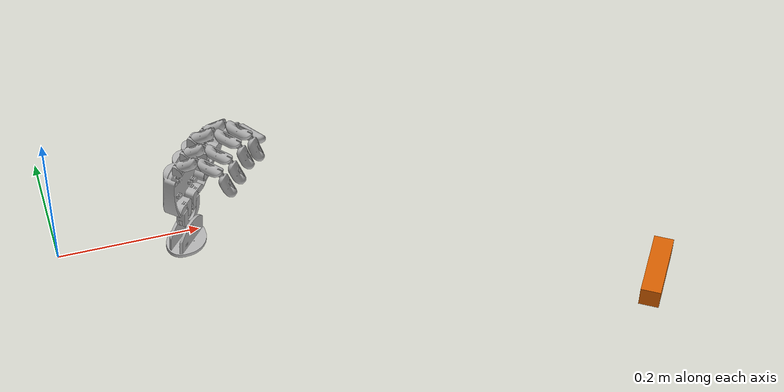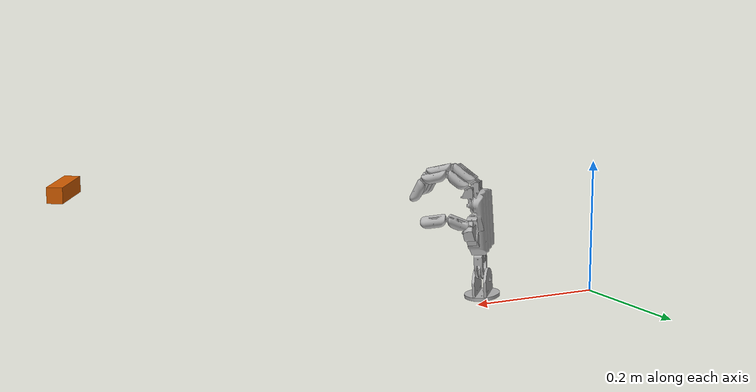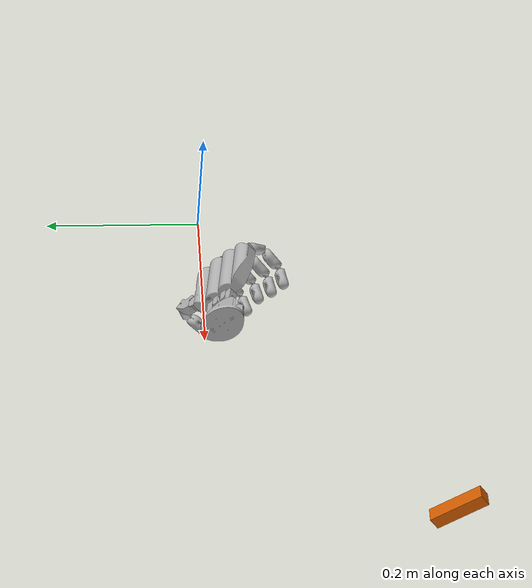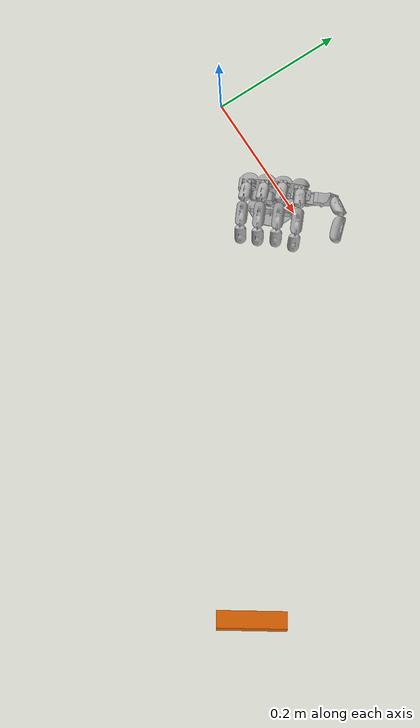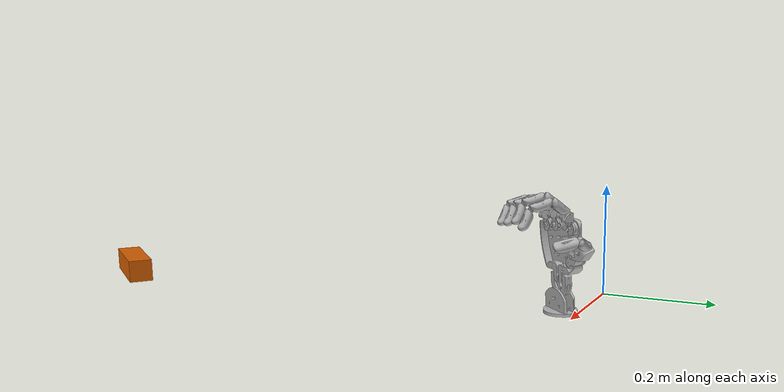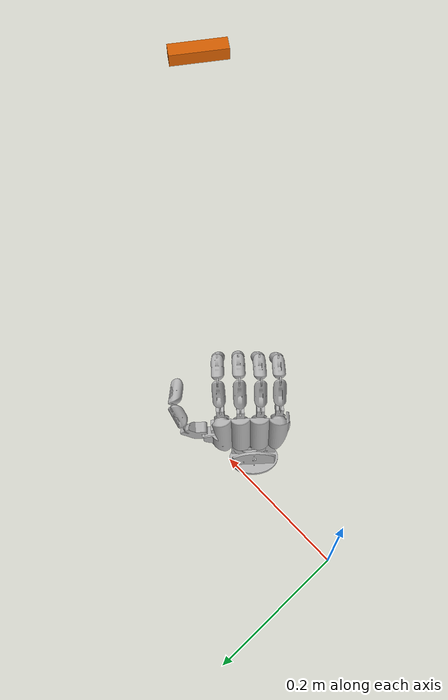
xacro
<?xml version="1.0" ?>
<robot name="anael" xmlns:xacro="http://www.ros.org/wiki/xacro">

<xacro:include filename="$(find anael_description)/urdf/materials.xacro" />
<xacro:include filename="$(find anael_description)/urdf/anael.trans" />
<xacro:include filename="$(find anael_description)/urdf/anael.gazebo" />

<gazebo>
    <plugin name="gazebo_ros_control" filename="libgazebo_ros_control.so">
      <robotNamespace>/anael</robotNamespace>
    </plugin>
</gazebo>

 <xacro:property name="PI" value="3.14159265359"/>
 <xacro:property name="mass" value="0.1" />
 <xacro:property name="x" value="0.025" />
 <xacro:property name="y" value="0.1" />
 <xacro:property name="z" value="0.025" />

<link name="base_link">
  <inertial>
    <origin rpy="0 0 0" xyz="0.10002682557543335 0.012769323705889093 0.07709696684718728"/>
    <mass value="0.23588508306984027"/>
    <inertia ixx="0.000089685" ixy="0.0" ixz="-0.0" iyy="0.0001505" iyz="0.0" izz="0.00013183"/>
  </inertial>
  <visual>
    <origin rpy="1.5 0 4" xyz="0.3 0 0"/>
    <geometry>
      <mesh filename="package://anael_description/meshes/base_link.stl" scale="0.001 0.001 0.001"/>
    </geometry>
    <material name="silver"/>
  </visual>
  <collision>
    <origin rpy="0 0 0" xyz="0 0 0"/>
    <geometry>
      <mesh filename="package://anael_description/meshes/base_link.stl" scale="0.001 0.001 0.001"/>
    </geometry>
  </collision>
</link>

<link name="bilekss_1">
  <inertial>
    <origin rpy="0 0 0" xyz="-8.27316457494287e-05 0.014975284308614334 0.006249999999999964"/>
    <mass value="0.06116058629875486"/>
    <inertia ixx="0.000008005" ixy="-0.0" ixz="0.0" iyy="0.000011149" iyz="0.0" izz="0.000017562"/>
  </inertial>
  <visual>
    <origin rpy="0 0 0" xyz="-0.1 -0.035 -0.071"/>
    <geometry>
      <mesh filename="package://anael_description/meshes/bilekss_1.stl" scale="0.001 0.001 0.001"/>
    </geometry>
    <material name="silver"/>
  </visual>
  <collision>
    <origin rpy="0 0 0" xyz="-0.1 -0.035 -0.071"/>
    <geometry>
      <mesh filename="package://anael_description/meshes/bilekss_1.stl" scale="0.001 0.001 0.001"/>
    </geometry>
  </collision>
</link>

<link name="el_1">
  <inertial>
    <origin rpy="0 0 0" xyz="-0.012835401921183695 0.048777298438696076 0.007642721088233481"/>
    <mass value="0.702343206321419"/>
    <inertia ixx="0.00074524" ixy="0.0" ixz="0.0" iyy="0.00082904" iyz="0.0" izz="0.001485"/>
  </inertial>
  <visual>
    <origin rpy="0 0 0" xyz="-0.112348 -0.062569 -0.07725"/>
    <geometry>
      <mesh filename="package://anael_description/meshes/el_1.stl" scale="0.001 0.001 0.001"/>
    </geometry>
    <material name="silver"/>
  </visual>
  <collision>
    <origin rpy="0 0 0" xyz="-0.112348 -0.062569 -0.07725"/>
    <geometry>
      <mesh filename="package://anael_description/meshes/el_1.stl" scale="0.001 0.001 0.001"/>
    </geometry>
  </collision>
</link>

<link name="bilekmakya_1">
  <inertial>
    <origin rpy="0 0 0" xyz="-0.002500088024158964 -1.4037957827742198e-05 -6.661338147750939e-16"/>
    <mass value="0.005498755569902937"/>
    <inertia ixx="2.0658e-7" ixy="0.0" ixz="-0.0" iyy="1.1495e-7" iyz="-0.0" izz="1.1532e-7"/>
  </inertial>
  <visual>
    <origin rpy="0 0 0" xyz="-0.102598 -0.062515 -0.07725"/>
    <geometry>
      <mesh filename="package://anael_description/meshes/bilekmakya_1.stl" scale="0.001 0.001 0.001"/>
    </geometry>
    <material name="silver"/>
  </visual>
  <collision>
    <origin rpy="0 0 0" xyz="-0.102598 -0.062515 -0.07725"/>
    <geometry>
      <mesh filename="package://anael_description/meshes/bilekmakya_1.stl" scale="0.001 0.001 0.001"/>
    </geometry>
  </collision>
</link>

<link name="bilekmakss_1">
  <inertial>
    <origin rpy="0 0 0" xyz="-1.2073675392798577e-15 -2.7755575615628914e-17 0.002500000000000238"/>
    <mass value="0.005498755569902937"/>
    <inertia ixx="1.1456e-7" ixy="0.0" ixz="0.0" iyy="1.1456e-7" iyz="0.0" izz="2.0621e-7"/>
  </inertial>
  <visual>
    <origin rpy="0 0 0" xyz="-0.1 -0.035 -0.07475"/>
    <geometry>
      <mesh filename="package://anael_description/meshes/bilekmakss_1.stl" scale="0.001 0.001 0.001"/>
    </geometry>
    <material name="silver"/>
  </visual>
  <collision>
    <origin rpy="0 0 0" xyz="-0.1 -0.035 -0.07475"/>
    <geometry>
      <mesh filename="package://anael_description/meshes/bilekmakss_1.stl" scale="0.001 0.001 0.001"/>
    </geometry>
  </collision>
</link>

<link name="bas1_1">
  <inertial>
    <origin rpy="0 0 0" xyz="-0.005673915058689145 0.011055433620382665 -0.007628462814600764"/>
    <mass value="0.06128758784766406"/>
    <inertia ixx="0.000011298" ixy="0.0" ixz="-0.0" iyy="0.0000064231" iyz="0.0" izz="0.00001536"/>
  </inertial>
  <visual>
    <origin rpy="0 0 0" xyz="-0.062528 -0.092533 -0.083767"/>
    <geometry>
      <mesh filename="package://anael_description/meshes/bas1_1.stl" scale="0.001 0.001 0.001"/>
    </geometry>
    <material name="silver"/>
  </visual>
  <collision>
    <origin rpy="0 0 0" xyz="-0.062528 -0.092533 -0.083767"/>
    <geometry>
      <mesh filename="package://anael_description/meshes/bas1_1.stl" scale="0.001 0.001 0.001"/>
    </geometry>
  </collision>
</link>

<link name="bas2_1">
  <inertial>
    <origin rpy="0 0 0" xyz="-0.020392823064728817 0.012419984525536498 6.508410954234045e-05"/>
    <mass value="0.08029006275726228"/>
    <inertia ixx="0.000009108" ixy="0.0" ixz="0.0" iyy="0.000020032" iyz="-0.0" izz="0.000024305"/>
  </inertial>
  <visual>
    <origin rpy="0 0 0" xyz="-0.049989 -0.099971 -0.076271"/>
    <geometry>
      <mesh filename="package://anael_description/meshes/bas2_1.stl" scale="0.001 0.001 0.001"/>
    </geometry>
    <material name="silver"/>
  </visual>
  <collision>
    <origin rpy="0 0 0" xyz="-0.049989 -0.099971 -0.076271"/>
    <geometry>
      <mesh filename="package://anael_description/meshes/bas2_1.stl" scale="0.001 0.001 0.001"/>
    </geometry>
  </collision>
</link>

<link name="bas3_1">
  <inertial>
    <origin rpy="0 0 0" xyz="-0.013173602102555821 0.011769487003394322 -0.0008753119918628732"/>
    <mass value="0.0436563439389364"/>
    <inertia ixx="0.000004861" ixy="0.0" ixz="-0.0" iyy="0.000004917" iyz="0.0" izz="0.000007783"/>
  </inertial>
  <visual>
    <origin rpy="0 0 0" xyz="-0.01464 -0.124406 -0.076285"/>
    <geometry>
      <mesh filename="package://anael_description/meshes/bas3_1.stl" scale="0.001 0.001 0.001"/>
    </geometry>
    <material name="silver"/>
  </visual>
  <collision>
    <origin rpy="0 0 0" xyz="-0.01464 -0.124406 -0.076285"/>
    <geometry>
      <mesh filename="package://anael_description/meshes/bas3_1.stl" scale="0.001 0.001 0.001"/>
    </geometry>
  </collision>
</link>

<link name="bas4_1">
  <inertial>
    <origin rpy="0 0 0" xyz="-0.015921842905640034 0.014490313495941293 -0.0033529053849926244"/>
    <mass value="0.05495371153395965"/>
    <inertia ixx="0.000008734" ixy="0.0" ixz="0.0" iyy="0.000008839" iyz="0.0" izz="0.000013838"/>
  </inertial>
  <visual>
    <origin rpy="0 0 0" xyz="0.00795 -0.146901 -0.073509"/>
    <geometry>
      <mesh filename="package://anael_description/meshes/bas4_1.stl" scale="0.001 0.001 0.001"/>
    </geometry>
    <material name="silver"/>
  </visual>
  <collision>
    <origin rpy="0 0 0" xyz="0.00795 -0.146901 -0.073509"/>
    <geometry>
      <mesh filename="package://anael_description/meshes/bas4_1.stl" scale="0.001 0.001 0.001"/>
    </geometry>
  </collision>
</link>

<link name="i1_1">
  <inertial>
    <origin rpy="0 0 0" xyz="1.6796940591576326e-05 -0.0002604854005841817 -0.0023322948385045422"/>
    <mass value="0.00767828320566423"/>
    <inertia ixx="2.9216e-7" ixy="-0.0" ixz="-0.0" iyy="2.9692e-7" iyz="0.0" izz="5.071e-7"/>
  </inertial>
  <visual>
    <origin rpy="0 0 0" xyz="-0.06223 -0.146535 -0.078797"/>
    <geometry>
      <mesh filename="package://anael_description/meshes/i1_1.stl" scale="0.001 0.001 0.001"/>
    </geometry>
    <material name="silver"/>
  </visual>
  <collision>
    <origin rpy="0 0 0" xyz="-0.06223 -0.146535 -0.078797"/>
    <geometry>
      <mesh filename="package://anael_description/meshes/i1_1.stl" scale="0.001 0.001 0.001"/>
    </geometry>
  </collision>
</link>

<link name="i2_1">
  <inertial>
    <origin rpy="0 0 0" xyz="-0.0020180489586227313 0.011472340663435499 -0.0017851926234861565"/>
    <mass value="0.014034991016966505"/>
    <inertia ixx="0.000001012" ixy="0.0" ixz="0.0" iyy="5.6343e-7" iyz="-0.0" izz="7.3032e-7"/>
  </inertial>
  <visual>
    <origin rpy="0 0 0" xyz="-0.063094 -0.152358 -0.073801"/>
    <geometry>
      <mesh filename="package://anael_description/meshes/i2_1.stl" scale="0.001 0.001 0.001"/>
    </geometry>
    <material name="silver"/>
  </visual>
  <collision>
    <origin rpy="0 0 0" xyz="-0.063094 -0.152358 -0.073801"/>
    <geometry>
      <mesh filename="package://anael_description/meshes/i2_1.stl" scale="0.001 0.001 0.001"/>
    </geometry>
  </collision>
</link>

<link name="i3_1">
  <inertial>
    <origin rpy="0 0 0" xyz="-0.0021612969641609456 0.01887681074886277 -0.001082047758521748"/>
    <mass value="0.04193790296481513"/>
    <inertia ixx="0.0000075677" ixy="0.0" ixz="-0.0" iyy="0.0000021172" iyz="0.0" izz="0.0000077397"/>
  </inertial>
  <visual>
    <origin rpy="0 0 0" xyz="-0.061613 -0.170802 -0.071311"/>
    <geometry>
      <mesh filename="package://anael_description/meshes/i3_1.stl" scale="0.001 0.001 0.001"/>
    </geometry>
    <material name="silver"/>
  </visual>
  <collision>
    <origin rpy="0 0 0" xyz="-0.061613 -0.170802 -0.071311"/>
    <geometry>
      <mesh filename="package://anael_description/meshes/i3_1.stl" scale="0.001 0.001 0.001"/>
    </geometry>
  </collision>
</link>

<link name="i4_1">
  <inertial>
    <origin rpy="0 0 0" xyz="-0.0022404721280600767 0.020061065664474076 -0.0031825316742030707"/>
    <mass value="0.0479861517111094"/>
    <inertia ixx="0.0000101" ixy="0.0" ixz="-0.0" iyy="0.0000028047" iyz="0.0" izz="0.0000099684"/>
  </inertial>
  <visual>
    <origin rpy="0 0 0" xyz="-0.059392 -0.2056 -0.06828"/>
    <geometry>
      <mesh filename="package://anael_description/meshes/i4_1.stl" scale="0.001 0.001 0.001"/>
    </geometry>
    <material name="silver"/>
  </visual>
  <collision>
    <origin rpy="0 0 0" xyz="-0.059392 -0.2056 -0.06828"/>
    <geometry>
      <mesh filename="package://anael_description/meshes/i4_1.stl" scale="0.001 0.001 0.001"/>
    </geometry>
  </collision>
</link>

<link name="i5_1">
  <inertial>
    <origin rpy="0 0 0" xyz="-0.002130576123605177 0.018422904227623937 -0.004389890187645032"/>
    <mass value="0.04261604760031565"/>
    <inertia ixx="0.0000077755" ixy="0.0" ixz="-0.0" iyy="0.0000026174" iyz="0.0" izz="0.0000074786"/>
  </inertial>
  <visual>
    <origin rpy="0 0 0" xyz="-0.057 -0.24295 -0.061703"/>
    <geometry>
      <mesh filename="package://anael_description/meshes/i5_1.stl" scale="0.001 0.001 0.001"/>
    </geometry>
    <material name="silver"/>
  </visual>
  <collision>
    <origin rpy="0 0 0" xyz="-0.057 -0.24295 -0.061703"/>
    <geometry>
      <mesh filename="package://anael_description/meshes/i5_1.stl" scale="0.001 0.001 0.001"/>
    </geometry>
  </collision>
</link>

<link name="o1_1">
  <inertial>
    <origin rpy="0 0 0" xyz="1.0750374228735149e-06 -0.0002606606302434922 -0.002332323827817992"/>
    <mass value="0.00767828315309844"/>
    <inertia ixx="2.887e-7" ixy="-0.0" ixz="-0.0" iyy="2.9692e-7" iyz="0.0" izz="5.0364e-7"/>
  </inertial>
  <visual>
    <origin rpy="0 0 0" xyz="-0.08721 -0.15017 -0.083799"/>
    <geometry>
      <mesh filename="package://anael_description/meshes/o1_1.stl" scale="0.001 0.001 0.001"/>
    </geometry>
    <material name="silver"/>
  </visual>
  <collision>
    <origin rpy="0 0 0" xyz="-0.08721 -0.15017 -0.083799"/>
    <geometry>
      <mesh filename="package://anael_description/meshes/o1_1.stl" scale="0.001 0.001 0.001"/>
    </geometry>
  </collision>
</link>

<link name="o2_1">
  <inertial>
    <origin rpy="0 0 0" xyz="-6.998296994781272e-05 0.012580902590559467 -0.0017842031247212453"/>
    <mass value="0.014034991016966505"/>
    <inertia ixx="9.9062e-7" ixy="0.0" ixz="0.0" iyy="5.4144e-7" iyz="-0.0" izz="6.87e-7"/>
  </inertial>
  <visual>
    <origin rpy="0 0 0" xyz="-0.087184 -0.154923 -0.078802"/>
    <geometry>
      <mesh filename="package://anael_description/meshes/o2_1.stl" scale="0.001 0.001 0.001"/>
    </geometry>
    <material name="silver"/>
  </visual>
  <collision>
    <origin rpy="0 0 0" xyz="-0.087184 -0.154923 -0.078802"/>
    <geometry>
      <mesh filename="package://anael_description/meshes/o2_1.stl" scale="0.001 0.001 0.001"/>
    </geometry>
  </collision>
</link>

<link name="o3_1">
  <inertial>
    <origin rpy="0 0 0" xyz="-0.001013122180829662 0.020360429581470052 -0.0012243834406794885"/>
    <mass value="0.04651721860873003"/>
    <inertia ixx="0.0000094543" ixy="0.0" ixz="-0.0" iyy="0.0000022536" iyz="0.0" izz="0.0000094714"/>
  </inertial>
  <visual>
    <origin rpy="0 0 0" xyz="-0.088076 -0.17443 -0.076313"/>
    <geometry>
      <mesh filename="package://anael_description/meshes/o3_1.stl" scale="0.001 0.001 0.001"/>
    </geometry>
    <material name="silver"/>
  </visual>
  <collision>
    <origin rpy="0 0 0" xyz="-0.088076 -0.17443 -0.076313"/>
    <geometry>
      <mesh filename="package://anael_description/meshes/o3_1.stl" scale="0.001 0.001 0.001"/>
    </geometry>
  </collision>
</link>

<link name="o4_1">
  <inertial>
    <origin rpy="0 0 0" xyz="-0.0010111780533361286 0.02016057249272915 -0.0031832672255033972"/>
    <mass value="0.04798615199736914"/>
    <inertia ixx="0.000010081" ixy="0.0" ixz="-0.0" iyy="0.0000026377" iyz="0.0" izz="0.0000097827"/>
  </inertial>
  <visual>
    <origin rpy="0 0 0" xyz="-0.087966 -0.212287 -0.073023"/>
    <geometry>
      <mesh filename="package://anael_description/meshes/o4_1.stl" scale="0.001 0.001 0.001"/>
    </geometry>
    <material name="silver"/>
  </visual>
  <collision>
    <origin rpy="0 0 0" xyz="-0.087966 -0.212287 -0.073023"/>
    <geometry>
      <mesh filename="package://anael_description/meshes/o4_1.stl" scale="0.001 0.001 0.001"/>
    </geometry>
  </collision>
</link>

<link name="o5_1">
  <inertial>
    <origin rpy="0 0 0" xyz="-0.0010020456775493847 0.018519173382804927 -0.004389579199767339"/>
    <mass value="0.04261650941764633"/>
    <inertia ixx="0.0000077626" ixy="0.0" ixz="-0.0" iyy="0.0000024959" iyz="0.0" izz="0.0000073443"/>
  </inertial>
  <visual>
    <origin rpy="0 0 0" xyz="-0.087859 -0.249713 -0.066445"/>
    <geometry>
      <mesh filename="package://anael_description/meshes/o5_1.stl" scale="0.001 0.001 0.001"/>
    </geometry>
    <material name="silver"/>
  </visual>
  <collision>
    <origin rpy="0 0 0" xyz="-0.087859 -0.249713 -0.066445"/>
    <geometry>
      <mesh filename="package://anael_description/meshes/o5_1.stl" scale="0.001 0.001 0.001"/>
    </geometry>
  </collision>
</link>

<link name="y1_1">
  <inertial>
    <origin rpy="0 0 0" xyz="-1.4963942569848343e-05 -0.0002602423091445649 -0.002332295138946422"/>
    <mass value="0.007678283205664206"/>
    <inertia ixx="2.916e-7" ixy="0.0" ixz="0.0" iyy="2.9692e-7" iyz="0.0" izz="5.0655e-7"/>
  </inertial>
  <visual>
    <origin rpy="0 0 0" xyz="-0.112229 -0.14681 -0.080797"/>
    <geometry>
      <mesh filename="package://anael_description/meshes/y1_1.stl" scale="0.001 0.001 0.001"/>
    </geometry>
    <material name="silver"/>
  </visual>
  <collision>
    <origin rpy="0 0 0" xyz="-0.112229 -0.14681 -0.080797"/>
    <geometry>
      <mesh filename="package://anael_description/meshes/y1_1.stl" scale="0.001 0.001 0.001"/>
    </geometry>
  </collision>
</link>

<link name="y2_1">
  <inertial>
    <origin rpy="0 0 0" xyz="0.0007125648758543046 0.012820757548843403 -0.001293941486414249"/>
    <mass value="0.013205329141038821"/>
    <inertia ixx="7.8012e-7" ixy="-0.0" ixz="-0.0" iyy="3.5766e-7" iyz="-0.0" izz="6.8004e-7"/>
  </inertial>
  <visual>
    <origin rpy="0 0 0" xyz="-0.112493 -0.151556 -0.0758"/>
    <geometry>
      <mesh filename="package://anael_description/meshes/y2_1.stl" scale="0.001 0.001 0.001"/>
    </geometry>
    <material name="silver"/>
  </visual>
  <collision>
    <origin rpy="0 0 0" xyz="-0.112493 -0.151556 -0.0758"/>
    <geometry>
      <mesh filename="package://anael_description/meshes/y2_1.stl" scale="0.001 0.001 0.001"/>
    </geometry>
  </collision>
</link>

<link name="y3_1">
  <inertial>
    <origin rpy="0 0 0" xyz="0.00015491426059491276 0.018999154362316917 -0.001266040260634177"/>
    <mass value="0.043154401170921036"/>
    <inertia ixx="0.0000078043" ixy="-0.0" ixz="0.0" iyy="0.0000021736" iyz="0.0" izz="0.0000079402"/>
  </inertial>
  <visual>
    <origin rpy="0 0 0" xyz="-0.114574 -0.170971 -0.073311"/>
    <geometry>
      <mesh filename="package://anael_description/meshes/y3_1.stl" scale="0.001 0.001 0.001"/>
    </geometry>
    <material name="silver"/>
  </visual>
  <collision>
    <origin rpy="0 0 0" xyz="-0.114574 -0.170971 -0.073311"/>
    <geometry>
      <mesh filename="package://anael_description/meshes/y3_1.stl" scale="0.001 0.001 0.001"/>
    </geometry>
  </collision>
</link>

<link name="y4_1">
  <inertial>
    <origin rpy="0 0 0" xyz="0.00022075120406518656 0.020184574342805184 -0.00318254574704141"/>
    <mass value="0.04798615252632859"/>
    <inertia ixx="0.000010102" ixy="-0.0" ixz="0.0" iyy="0.0000027748" iyz="0.0" izz="0.0000099402"/>
  </inertial>
  <visual>
    <origin rpy="0 0 0" xyz="-0.11661 -0.205781 -0.07028"/>
    <geometry>
      <mesh filename="package://anael_description/meshes/y4_1.stl" scale="0.001 0.001 0.001"/>
    </geometry>
    <material name="silver"/>
  </visual>
  <collision>
    <origin rpy="0 0 0" xyz="-0.11661 -0.205781 -0.07028"/>
    <geometry>
      <mesh filename="package://anael_description/meshes/y4_1.stl" scale="0.001 0.001 0.001"/>
    </geometry>
  </collision>
</link>

<link name="y5_1">
  <inertial>
    <origin rpy="0 0 0" xyz="0.0001293643122072391 0.018545303080616332 -0.004389928487263772"/>
    <mass value="0.042615407205845585"/>
    <inertia ixx="0.0000077764" ixy="-0.0" ixz="0.0" iyy="0.0000025973" iyz="0.0" izz="0.0000074594"/>
  </inertial>
  <visual>
    <origin rpy="0 0 0" xyz="-0.118788 -0.243144 -0.063703"/>
    <geometry>
      <mesh filename="package://anael_description/meshes/y5_1.stl" scale="0.001 0.001 0.001"/>
    </geometry>
    <material name="silver"/>
  </visual>
  <collision>
    <origin rpy="0 0 0" xyz="-0.118788 -0.243144 -0.063703"/>
    <geometry>
      <mesh filename="package://anael_description/meshes/y5_1.stl" scale="0.001 0.001 0.001"/>
    </geometry>
  </collision>
</link>

<link name="s1_1">
  <inertial>
    <origin rpy="0 0 0" xyz="-1.514987007653068e-05 -0.00026079424915367855 -0.002332266895182955"/>
    <mass value="0.007678283206677622"/>
    <inertia ixx="2.9163e-7" ixy="0.0" ixz="0.0" iyy="2.9692e-7" iyz="0.0" izz="5.0657e-7"/>
  </inertial>
  <visual>
    <origin rpy="0 0 0" xyz="-0.137248 -0.14345 -0.078795"/>
    <geometry>
      <mesh filename="package://anael_description/meshes/s1_1.stl" scale="0.001 0.001 0.001"/>
    </geometry>
    <material name="silver"/>
  </visual>
  <collision>
    <origin rpy="0 0 0" xyz="-0.137248 -0.14345 -0.078795"/>
    <geometry>
      <mesh filename="package://anael_description/meshes/s1_1.stl" scale="0.001 0.001 0.001"/>
    </geometry>
  </collision>
</link>

<link name="s2_1">
  <inertial>
    <origin rpy="0 0 0" xyz="0.0007208392585435763 0.012820622510178598 -0.0012939113521195228"/>
    <mass value="0.013205323711603097"/>
    <inertia ixx="7.802e-7" ixy="-0.0" ixz="-0.0" iyy="3.5782e-7" iyz="-0.0" izz="6.8033e-7"/>
  </inertial>
  <visual>
    <origin rpy="0 0 0" xyz="-0.137514 -0.148195 -0.073798"/>
    <geometry>
      <mesh filename="package://anael_description/meshes/s2_1.stl" scale="0.001 0.001 0.001"/>
    </geometry>
    <material name="silver"/>
  </visual>
  <collision>
    <origin rpy="0 0 0" xyz="-0.137514 -0.148195 -0.073798"/>
    <geometry>
      <mesh filename="package://anael_description/meshes/s2_1.stl" scale="0.001 0.001 0.001"/>
    </geometry>
  </collision>
</link>

<link name="s3_1">
  <inertial>
    <origin rpy="0 0 0" xyz="0.00016620402647835042 0.018999119251503604 -0.0012660129322788344"/>
    <mass value="0.043154401166728466"/>
    <inertia ixx="0.0000078043" ixy="-0.0" ixz="0.0" iyy="0.000002175" iyz="0.0" izz="0.0000079416"/>
  </inertial>
  <visual>
    <origin rpy="0 0 0" xyz="-0.139607 -0.167609 -0.071309"/>
    <geometry>
      <mesh filename="package://anael_description/meshes/s3_1.stl" scale="0.001 0.001 0.001"/>
    </geometry>
    <material name="silver"/>
  </visual>
  <collision>
    <origin rpy="0 0 0" xyz="-0.139607 -0.167609 -0.071309"/>
    <geometry>
      <mesh filename="package://anael_description/meshes/s3_1.stl" scale="0.001 0.001 0.001"/>
    </geometry>
  </collision>
</link>

<link name="s4_1">
  <inertial>
    <origin rpy="0 0 0" xyz="0.0001562325757559213 0.018816821489514413 -0.0029150851282655765"/>
    <mass value="0.04315440116672846"/>
    <inertia ixx="0.0000080578" ixy="-0.0" ixz="0.0" iyy="0.0000024045" iyz="0.0" izz="0.0000079632"/>
  </inertial>
  <visual>
    <origin rpy="0 0 0" xyz="-0.141663 -0.202417 -0.068278"/>
    <geometry>
      <mesh filename="package://anael_description/meshes/s4_1.stl" scale="0.001 0.001 0.001"/>
    </geometry>
    <material name="silver"/>
  </visual>
  <collision>
    <origin rpy="0 0 0" xyz="-0.141663 -0.202417 -0.068278"/>
    <geometry>
      <mesh filename="package://anael_description/meshes/s4_1.stl" scale="0.001 0.001 0.001"/>
    </geometry>
  </collision>
</link>

<link name="s5_1">
  <inertial>
    <origin rpy="0 0 0" xyz="0.00014104109701251755 0.018545759375697635 -0.004389614211409633"/>
    <mass value="0.042615679526844315"/>
    <inertia ixx="0.0000077764" ixy="-0.0" ixz="0.0" iyy="0.0000025984" iyz="0.0" izz="0.0000074606"/>
  </inertial>
  <visual>
    <origin rpy="0 0 0" xyz="-0.143697 -0.236829 -0.06222"/>
    <geometry>
      <mesh filename="package://anael_description/meshes/s5_1.stl" scale="0.001 0.001 0.001"/>
    </geometry>
    <material name="silver"/>
  </visual>
  <collision>
    <origin rpy="0 0 0" xyz="-0.143697 -0.236829 -0.06222"/>
    <geometry>
      <mesh filename="package://anael_description/meshes/s5_1.stl" scale="0.001 0.001 0.001"/>
    </geometry>
  </collision>
</link>

<link name="camera_link">
  <collision>
    <origin xyz="0 0 0" rpy="0 0 0"/>
    <geometry>
       <box size="0.025 0.1 0.025"/>
    </geometry>
  </collision>
  <visual>
    <origin xyz="0 0 0" rpy="0 0 0"/>
    <geometry>
       <box size="0.025 0.1 0.025"/>
    </geometry>
  </visual>
  <inertial>
    <mass value="${mass}" />
    <origin xyz="0 0 0" />
    <inertia ixx="${0.0833333 * mass * (y*y + z*z)}" ixy="0.0" ixz="0.0"
      iyy="${0.0833333 * mass * (x*x + z*z)}" iyz="0.0"
      izz="${0.0833333 * mass * (x*x + y*y)}" />
  </inertial>
</link>

<joint name="bilekssj" type="revolute">
  <origin rpy="1.5 0 4" xyz="0.1866 -0.0258 0.04"/>
  <parent link="base_link"/>
  <child link="bilekss_1"/>
  <axis xyz="0.0 0.0 -1.0"/>
  <limit effort="5.0" lower="-0.785398" upper="0.785398" velocity="1.0"/>
</joint>

<joint name="bilekyaj" type="revolute">
  <origin rpy="0 0 0" xyz="0.012348 0.027569 0.00625"/>
  <parent link="bilekss_1"/>
  <child link="el_1"/>
  <axis xyz="0.999985 0.00553 -0.0"/>
  <limit effort="5.0" lower="-1.48353" upper="0.0" velocity="1.0"/>
</joint>

<joint name="makya" type="fixed">
  <origin rpy="0 0 0" xyz="-0.00975 -5.4e-05 0.0"/>
  <parent link="el_1"/>
  <child link="bilekmakya_1"/>
</joint>

<joint name="makss" type="fixed">
  <origin rpy="0 0 0" xyz="0.0 0.0 0.00375"/>
  <parent link="bilekss_1"/>
  <child link="bilekmakss_1"/>
</joint>

<joint name="basj1" type="revolute">
  <origin rpy="0 0 0" xyz="-0.04982 0.029964 0.006517"/>
  <parent link="el_1"/>
  <child link="bas1_1"/>
  <axis xyz="3e-06 -0.000563 1.0"/>
  <limit effort="10.0" lower="-0.244346" upper="-0.0" velocity="1.0"/>
</joint>

<joint name="basj2" type="revolute">
  <origin rpy="0 0 0" xyz="-0.012539 0.007438 -0.007496"/>
  <parent link="bas1_1"/>
  <child link="bas2_1"/>
  <axis xyz="0.005277 -0.999986 -0.000563"/>
  <limit effort="0.05" lower="0.0" upper="1.570796" velocity="1.0"/>
</joint>

<joint name="basj3" type="revolute">
  <origin rpy="0 0 0" xyz="-0.035349 0.024435 1.4e-05"/>
  <parent link="bas2_1"/>
  <child link="bas3_1"/>
  <axis xyz="0.703366 0.710828 0.000398"/>
  <limit effort="0.05" lower="-1.48353" upper="-0.087266" velocity="1.0"/>
</joint>

<joint name="basj4" type="revolute">
  <origin rpy="0 0 0" xyz="-0.02259 0.022495 -0.002776"/>
  <parent link="bas3_1"/>
  <child link="bas4_1"/>
  <axis xyz="0.703366 0.710828 0.000398"/>
  <limit effort="0.05" lower="-1.48353" upper="-0.087266" velocity="1.0"/>
</joint>

<joint name="ij1" type="revolute">
  <origin rpy="0 0 0" xyz="-0.050118 0.083966 0.001547"/>
  <parent link="el_1"/>
  <child link="i1_1"/>
  <axis xyz="-3e-06 0.000563 -1.0"/>
  <limit effort="0.2" lower="-0.349066" upper="0.349066" velocity="1.0"/>
</joint>

<joint name="ij2" type="fixed">
  <origin rpy="0 0 0" xyz="0.000864 0.005823 -0.004996"/>
  <parent link="i1_1"/>
  <child link="i2_1"/>
</joint>

<joint name="ij3" type="revolute">
  <origin rpy="0 0 0" xyz="-0.001481 0.018444 -0.00249"/>
  <parent link="i2_1"/>
  <child link="i3_1"/>
  <axis xyz="0.997782 0.066568 3.4e-05"/>
  <limit effort="0.2" lower="-1.48353" upper="-0.087266" velocity="1.0"/>
</joint>

<joint name="ij4" type="revolute">
  <origin rpy="0 0 0" xyz="-0.002221 0.034798 -0.003031"/>
  <parent link="i3_1"/>
  <child link="i4_1"/>
  <axis xyz="0.997782 0.066568 3.4e-05"/>
  <limit effort="0.1" lower="-1.48353" upper="-0.087266" velocity="1.0"/>
</joint>

<joint name="ij5" type="revolute">
  <origin rpy="0 0 0" xyz="-0.002392 0.03735 -0.006577"/>
  <parent link="i4_1"/>
  <child link="i5_1"/>
  <axis xyz="0.997782 0.066568 3.4e-05"/>
  <limit effort="0.1" lower="-1.48353" upper="-0.087266" velocity="1.0"/>
</joint>

<joint name="oj1" type="revolute">
  <origin rpy="0 0 0" xyz="-0.025138 0.087601 0.006549"/>
  <parent link="el_1"/>
  <child link="o1_1"/>
  <axis xyz="-3e-06 0.000563 -1.0"/>
  <limit effort="0.2" lower="-0.349066" upper="0.349066" velocity="1.0"/>
</joint>

<joint name="oj2" type="fixed">
  <origin rpy="0 0 0" xyz="-2.6e-05 0.004753 -0.004997"/>
  <parent link="o1_1"/>
  <child link="o2_1"/>
</joint>

<joint name="oj3" type="revolute">
  <origin rpy="0 0 0" xyz="0.000892 0.019507 -0.002489"/>
  <parent link="o2_1"/>
  <child link="o3_1"/>
  <axis xyz="0.999985 0.00553 -0.0"/>
  <limit effort="0.2" lower="-1.48353" upper="-0.087266" velocity="1.0"/>
</joint>

<joint name="oj4" type="revolute">
  <origin rpy="0 0 0" xyz="-0.00011 0.037857 -0.00329"/>
  <parent link="o3_1"/>
  <child link="o4_1"/>
  <axis xyz="0.999985 0.00553 -0.0"/>
  <limit effort="0.1" lower="-1.48353" upper="-0.087266" velocity="1.0"/>
</joint>

<joint name="oj5" type="revolute">
  <origin rpy="0 0 0" xyz="-0.000107 0.037426 -0.006578"/>
  <parent link="o4_1"/>
  <child link="o5_1"/>
  <axis xyz="0.999985 0.00553 -0.0"/>
  <limit effort="0.1" lower="-1.48353" upper="-0.087266" velocity="1.0"/>
</joint>

<joint name="yj1" type="revolute">
  <origin rpy="0 0 0" xyz="-0.000119 0.084241 0.003547"/>
  <parent link="el_1"/>
  <child link="y1_1"/>
  <axis xyz="-3e-06 0.000563 -1.0"/>
  <limit effort="0.2" lower="-0.349066" upper="0.349066" velocity="1.0"/>
</joint>

<joint name="yj2" type="fixed">
  <origin rpy="0 0 0" xyz="0.000264 0.004746 -0.004997"/>
  <parent link="y1_1"/>
  <child link="y2_1"/>
</joint>

<joint name="yj3" type="revolute">
  <origin rpy="0 0 0" xyz="0.002081 0.019415 -0.002489"/>
  <parent link="y2_1"/>
  <child link="y3_1"/>
  <axis xyz="0.998457 -0.055528 -3.4e-05"/>
  <limit effort="0.2" lower="-1.48353" upper="-0.087266" velocity="1.0"/>
</joint>

<joint name="yj4" type="revolute">
  <origin rpy="0 0 0" xyz="0.002036 0.03481 -0.003031"/>
  <parent link="y3_1"/>
  <child link="y4_1"/>
  <axis xyz="0.998457 -0.055528 -3.4e-05"/>
  <limit effort="0.1" lower="-1.48353" upper="-0.087266" velocity="1.0"/>
</joint>

<joint name="yj5" type="revolute">
  <origin rpy="0 0 0" xyz="0.002178 0.037363 -0.006577"/>
  <parent link="y4_1"/>
  <child link="y5_1"/>
  <axis xyz="0.998457 -0.055528 -3.4e-05"/>
  <limit effort="0.1" lower="-1.48353" upper="-0.087266" velocity="1.0"/>
</joint>

<joint name="sj1" type="revolute">
  <origin rpy="0 0 0" xyz="0.0249 0.080881 0.001545"/>
  <parent link="el_1"/>
  <child link="s1_1"/>
  <axis xyz="-3e-06 0.000563 -1.0"/>
  <limit effort="0.2" lower="-0.261799" upper="0.261799" velocity="1.0"/>
</joint>

<joint name="sj2" type="fixed">
  <origin rpy="0 0 0" xyz="0.000266 0.004745 -0.004997"/>
  <parent link="s1_1"/>
  <child link="s2_1"/>
</joint>

<joint name="sj3" type="revolute">
  <origin rpy="0 0 0" xyz="0.002093 0.019414 -0.002489"/>
  <parent link="s2_1"/>
  <child link="s3_1"/>
  <axis xyz="0.998424 -0.056113 -3.5e-05"/>
  <limit effort="0.2" lower="-1.48353" upper="-0.087266" velocity="1.0"/>
</joint>

<joint name="sj4" type="revolute">
  <origin rpy="0 0 0" xyz="0.002056 0.034808 -0.003031"/>
  <parent link="s3_1"/>
  <child link="s4_1"/>
  <axis xyz="0.998424 -0.056113 -3.5e-05"/>
  <limit effort="0.1" lower="-1.48353" upper="-0.087266" velocity="1.0"/>
</joint>

<joint name="sj5" type="revolute">
  <origin rpy="0 0 0" xyz="0.002034 0.034412 -0.006058"/>
  <parent link="s4_1"/>
  <child link="s5_1"/>
  <axis xyz="0.998424 -0.056113 -3.5e-05"/>
  <limit effort="0.1" lower="-1.48353" upper="-0.087266" velocity="1.0"/>
</joint>

<link name="world"/>
<joint name="world_to_joint" type="fixed">
  <parent link="world"/>
  <child link="base_link"/>
</joint>
<joint name="world_to_camera" type="fixed">
  <origin rpy="0 0 2.54159265359 " xyz="0.7 -0.4 0.15 "/>
  <parent link="world"/>
  <child link="camera_link"/>
</joint>

</robot>

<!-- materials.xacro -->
<robot name="anael" xmlns:xacro="http://www.ros.org/wiki/xacro" >

<material name="silver">
  <color rgba="0.700 0.700 0.700 1.000"/>
</material>

</robot>

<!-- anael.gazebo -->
<robot name="anael" xmlns:xacro="http://www.ros.org/wiki/xacro" >

<xacro:property name="body_color" value="Gazebo/Silver" />

<gazebo>
  <plugin filename="libgazebo_ros_control.so" name="control"/>
</gazebo>

<gazebo reference="base_link">
  <material>${body_color}</material>
  <mu1>0.2</mu1>
  <mu2>0.2</mu2>
  <selfCollide>true</selfCollide>
  <gravity>true</gravity>
</gazebo>

<gazebo reference="bas1_1">
  <material>${body_color}</material>
  <mu1>0.2</mu1>
  <mu2>0.2</mu2>
  <selfCollide>true</selfCollide>
</gazebo>

<gazebo reference="bas2_1">
  <material>${body_color}</material>
  <mu1>0.2</mu1>
  <mu2>0.2</mu2>
  <selfCollide>true</selfCollide>
</gazebo>

<gazebo reference="bas3_1">
  <material>${body_color}</material>
  <mu1>0.2</mu1>
  <mu2>0.2</mu2>
  <selfCollide>true</selfCollide>
</gazebo>

<gazebo reference="bas4_1">
  <material>${body_color}</material>
  <mu1>0.2</mu1>
  <mu2>0.2</mu2>
  <selfCollide>true</selfCollide>
</gazebo>

<gazebo reference="i1_1">
  <material>${body_color}</material>
  <mu1>0.2</mu1>
  <mu2>0.2</mu2>
  <selfCollide>true</selfCollide>
</gazebo>

<gazebo reference="i2_1">
  <material>${body_color}</material>
  <mu1>0.2</mu1>
  <mu2>0.2</mu2>
  <selfCollide>true</selfCollide>
</gazebo>

<gazebo reference="i3_1">
  <material>${body_color}</material>
  <mu1>0.2</mu1>
  <mu2>0.2</mu2>
  <selfCollide>true</selfCollide>
</gazebo>

<gazebo reference="i4_1">
  <material>${body_color}</material>
  <mu1>0.2</mu1>
  <mu2>0.2</mu2>
  <selfCollide>true</selfCollide>
</gazebo>

<gazebo reference="i5_1">
  <material>${body_color}</material>
  <mu1>0.2</mu1>
  <mu2>0.2</mu2>
  <selfCollide>true</selfCollide>
</gazebo>

<gazebo reference="o1_1">
  <material>${body_color}</material>
  <mu1>0.2</mu1>
  <mu2>0.2</mu2>
  <selfCollide>true</selfCollide>
</gazebo>

<gazebo reference="o2_1">
  <material>${body_color}</material>
  <mu1>0.2</mu1>
  <mu2>0.2</mu2>
  <selfCollide>true</selfCollide>
</gazebo>

<gazebo reference="o3_1">
  <material>${body_color}</material>
  <mu1>0.2</mu1>
  <mu2>0.2</mu2>
  <selfCollide>true</selfCollide>
</gazebo>

<gazebo reference="o4_1">
  <material>${body_color}</material>
  <mu1>0.2</mu1>
  <mu2>0.2</mu2>
  <selfCollide>true</selfCollide>
</gazebo>

<gazebo reference="o5_1">
  <material>${body_color}</material>
  <mu1>0.2</mu1>
  <mu2>0.2</mu2>
  <selfCollide>true</selfCollide>
</gazebo>

<gazebo reference="y1_1">
  <material>${body_color}</material>
  <mu1>0.2</mu1>
  <mu2>0.2</mu2>
  <selfCollide>true</selfCollide>
</gazebo>

<gazebo reference="y2_1">
  <material>${body_color}</material>
  <mu1>0.2</mu1>
  <mu2>0.2</mu2>
  <selfCollide>true</selfCollide>
</gazebo>

<gazebo reference="y3_1">
  <material>${body_color}</material>
  <mu1>0.2</mu1>
  <mu2>0.2</mu2>
  <selfCollide>true</selfCollide>
</gazebo>

<gazebo reference="y4_1">
  <material>${body_color}</material>
  <mu1>0.2</mu1>
  <mu2>0.2</mu2>
  <selfCollide>true</selfCollide>
</gazebo>

<gazebo reference="y5_1">
  <material>${body_color}</material>
  <mu1>0.2</mu1>
  <mu2>0.2</mu2>
  <selfCollide>true</selfCollide>
</gazebo>

<gazebo reference="s1_1">
  <material>${body_color}</material>
  <mu1>0.2</mu1>
  <mu2>0.2</mu2>
  <selfCollide>true</selfCollide>
</gazebo>

<gazebo reference="s2_1">
  <material>${body_color}</material>
  <mu1>0.2</mu1>
  <mu2>0.2</mu2>
  <selfCollide>true</selfCollide>
</gazebo>

<gazebo reference="s3_1">
  <material>${body_color}</material>
  <mu1>0.2</mu1>
  <mu2>0.2</mu2>
  <selfCollide>true</selfCollide>
</gazebo>

<gazebo reference="s4_1">
  <material>${body_color}</material>
  <mu1>0.2</mu1>
  <mu2>0.2</mu2>
  <selfCollide>true</selfCollide>
</gazebo>

<gazebo reference="s5_1">
  <material>${body_color}</material>
  <mu1>0.2</mu1>
  <mu2>0.2</mu2>
  <selfCollide>true</selfCollide>
</gazebo>

<gazebo reference="camera_link">
  <material value="Gazebo/Red"/>
  <sensor name="camera_link_camera" type="depth">
    <update_rate>30.0</update_rate>
    <camera>
      <horizontal_fov>1.047198</horizontal_fov>
      <image>
	<width>640</width>
	<height>480</height>
	<format>R8G8B8</format>
      </image>
      <clip>
	<near>0.05</near>
	<far>3</far>
      </clip>
    </camera>
    <plugin name="camera_link_controller" filename="libgazebo_ros_openni_kinect.so">
      <baseline>0.2</baseline>
      <alwaysOn>true</alwaysOn>
      <updateRate>5.0</updateRate>
      <cameraName></cameraName>
      <imageTopicName>/camera/rgb/image_raw</imageTopicName>
      <frameName>camera_link</frameName>
      <pointCloudCutoff>0.5</pointCloudCutoff>
      <pointCloudCutoffMax>3.0</pointCloudCutoffMax>
      <distortionK1>0.00000001</distortionK1>
      <distortionK2>0.00000001</distortionK2>
      <distortionK3>0.00000001</distortionK3>
      <distortionT1>0.00000001</distortionT1>
      <distortionT2>0.00000001</distortionT2>
      <CxPrime>0</CxPrime>
      <Cx>0</Cx>
      <Cy>0</Cy>
      <focalLength>0</focalLength>
      <hackBaseline>0</hackBaseline>
    </plugin>
  </sensor>
</gazebo>

</robot>
